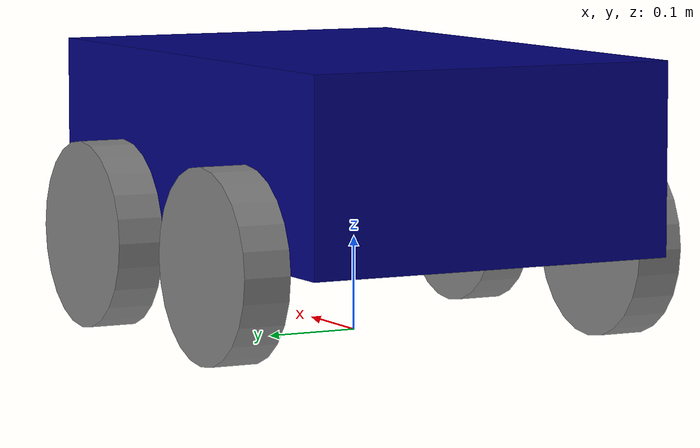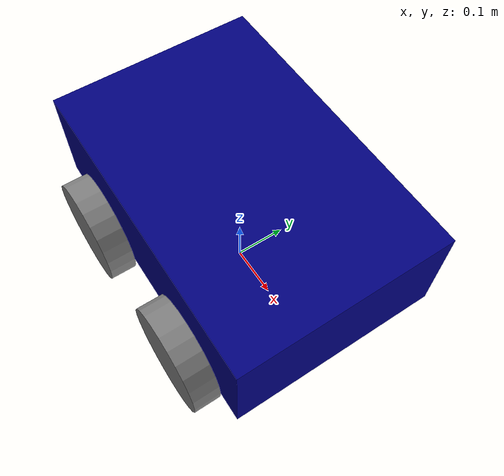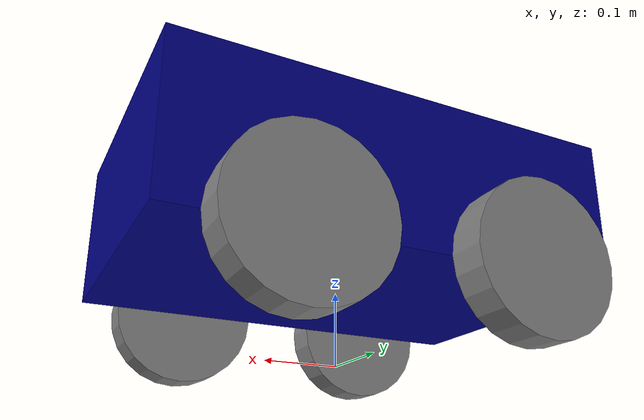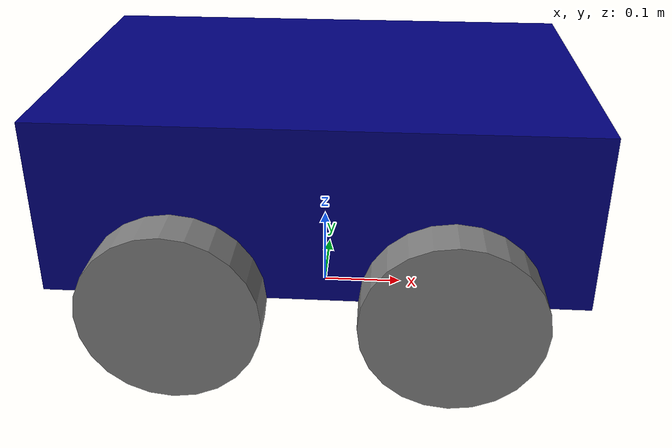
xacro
<?xml version="1.0"?>
<robot name="my_robot" xmlns:xacro="http://www.ros.org/wiki/xacro">

    <!-- ========== MATERIALS ========== -->
    <material name="blue">
        <color rgba="0 0 0.5 1" />
    </material>
    <material name="grey">
        <color rgba="0.5 0.5 0.5 1" />
    </material>

    <!-- ========== BASE LINKS ========== -->
    <link name="base_footprint" />

    <link name="base_link">
        <visual>
            <geometry>
                <box size="0.6 0.4 0.2" />
            </geometry>
            <origin xyz="0 0 0.1" rpy="0 0 0" />
            <material name="blue" />
        </visual>
            <collision>
                <geometry>
                    <box size="0.6 0.4 0.2" />
                </geometry>
                <origin xyz="0 0 0.1" rpy="0 0 0" />
            </collision>
            <inertial>
                <mass value="20" />
                <inertia ixx="1.0" ixy="0.0" ixz="0.0" iyy="1.0" iyz="0.0" izz="1.0" />
            </inertial>
    </link>

    <!-- ========== WHEEL LINKS ========== -->
    <link name="front_left_wheel_link">
        <visual>
            <geometry>
                <cylinder radius="0.1" length="0.05" />
            </geometry>
            <origin xyz="0 0 0" rpy="1.5708 0 0" />
            <material name="grey" />
        </visual>
            <collision>
                <geometry>
                    <cylinder radius="0.1" length="0.05" />
                </geometry>
                <origin xyz="0 0 0" rpy="1.5708 0 0" />
            </collision>
            <inertial>
                <mass value="2" />
                <inertia ixx="0.01" ixy="0.0" ixz="0.0" iyy="0.01" iyz="0.0" izz="0.01" />
            </inertial>
    </link>
    <link name="front_right_wheel_link">
        <visual>
            <geometry>
                <cylinder radius="0.1" length="0.05" />
            </geometry>
            <origin xyz="0 0 0" rpy="1.5708 0 0" />
            <material name="grey" />
        </visual>
            <collision>
                <geometry>
                    <cylinder radius="0.1" length="0.05" />
                </geometry>
                <origin xyz="0 0 0" rpy="1.5708 0 0" />
            </collision>
            <inertial>
                <mass value="2" />
                <inertia ixx="0.01" ixy="0.0" ixz="0.0" iyy="0.01" iyz="0.0" izz="0.01" />
            </inertial>
    </link>
    <link name="back_left_wheel_link">
        <visual>
            <geometry>
                <cylinder radius="0.1" length="0.05" />
            </geometry>
            <origin xyz="0 0 0" rpy="1.5708 0 0" />
            <material name="grey" />
        </visual>
            <collision>
                <geometry>
                    <cylinder radius="0.1" length="0.05" />
                </geometry>
                <origin xyz="0 0 0" rpy="1.5708 0 0" />
            </collision>
            <inertial>
                <mass value="2" />
                <inertia ixx="0.01" ixy="0.0" ixz="0.0" iyy="0.01" iyz="0.0" izz="0.01" />
            </inertial>
    </link>
    <link name="back_right_wheel_link">
        <visual>
            <geometry>
                <cylinder radius="0.1" length="0.05" />
            </geometry>
            <origin xyz="0 0 0" rpy="1.5708 0 0" />
            <material name="grey" />
        </visual>
            <collision>
                <geometry>
                    <cylinder radius="0.1" length="0.05" />
                </geometry>
                <origin xyz="0 0 0" rpy="1.5708 0 0" />
            </collision>
            <inertial>
                <mass value="2" />
                <inertia ixx="0.01" ixy="0.0" ixz="0.0" iyy="0.01" iyz="0.0" izz="0.01" />
            </inertial>
    </link>

    <!-- ========== JOINTS ========== -->
    <joint name="base_joint" type="fixed">
        <parent link="base_footprint" />
        <child link="base_link" />
        <origin xyz="0 0 0.1" rpy="0 0 0"/>
    </joint>

    <joint name="front_left_wheel_joint" type="continuous">
        <parent link="base_link" />
        <child link="front_left_wheel_link" />
        <origin xyz="0.15 0.225 0" rpy="0 0 0" />
        <axis xyz="0 1 0" />
    </joint>
    <joint name="front_right_wheel_joint" type="continuous">
        <parent link="base_link" />
        <child link="front_right_wheel_link" />
        <origin xyz="0.15 -0.225 0" rpy="0 0 0" />
        <axis xyz="0 1 0" />
    </joint>
    <joint name="back_left_wheel_joint" type="continuous">
        <parent link="base_link" />
        <child link="back_left_wheel_link" />
        <origin xyz="-0.15 0.225 0" rpy="0 0 0" />
        <axis xyz="0 1 0" />
    </joint>
    <joint name="back_right_wheel_joint" type="continuous">
        <parent link="base_link" />
        <child link="back_right_wheel_link" />
        <origin xyz="-0.15 -0.225 0" rpy="0 0 0" />
        <axis xyz="0 1 0" />
    </joint>
    <!-- For 6 wheels, add middle_left_wheel_joint and middle_right_wheel_joint with appropriate origins -->

    <!-- ========== ROS2 CONTROL ========== -->
    <ros2_control name="MobileBaseHardwareInterface" type="system">
        <hardware>
            <plugin>mock_components/GenericSystem</plugin>
            <param name="calculate_dynamics">true</param>
        </hardware>
        <joint name="front_left_wheel_joint">
            <command_interface name="velocity" />
            <state_interface name="position" />
            <state_interface name="velocity" />
        </joint>
        <joint name="front_right_wheel_joint">
            <command_interface name="velocity" />
            <state_interface name="position" />
            <state_interface name="velocity" />
        </joint>
        <joint name="back_left_wheel_joint">
            <command_interface name="velocity" />
            <state_interface name="position" />
            <state_interface name="velocity" />
        </joint>
        <joint name="back_right_wheel_joint">
            <command_interface name="velocity" />
            <state_interface name="position" />
            <state_interface name="velocity" />
        </joint>

    </ros2_control>

</robot>
